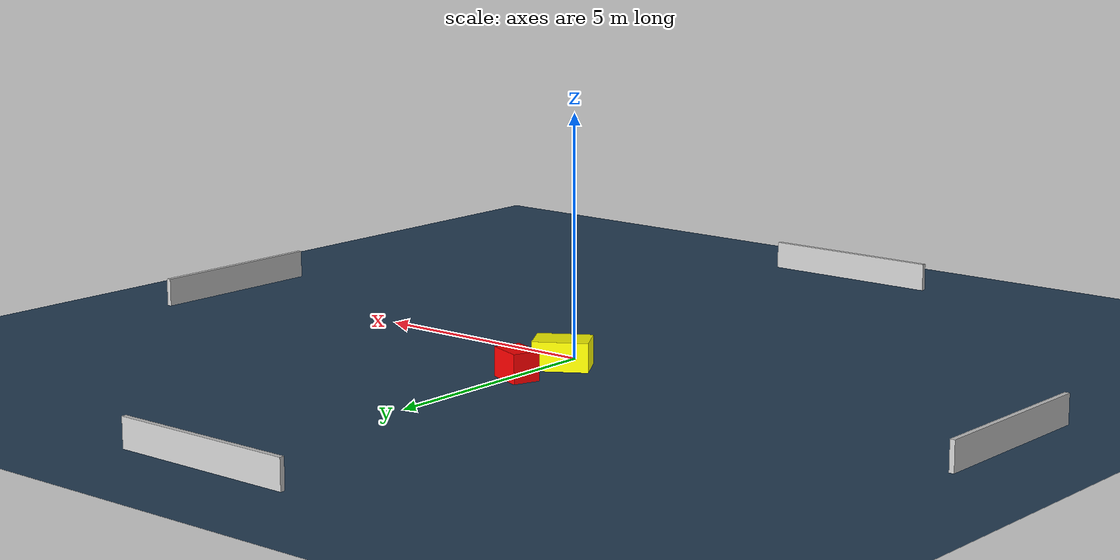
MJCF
<?xml version="1.0" ?>
<mujoco model="generated_environment">
  <option timestep="0.01" integrator="RK4" cone="elliptic"/>
  <default>
    <geom density="1"/>
  </default>
  <asset>
    <texture builtin="gradient" height="3072" name="skybox" rgb1="0.3 0.5 0.7" rgb2="0 0 0" type="skybox" width="512"/>
    <texture builtin="checker" height="300" name="groundplane" rgb1="0.2 0.3 0.4" rgb2="0.1 0.2 0.3" type="2d" width="300"/>
    <material name="groundplane" reflectance="0.2" texrepeat="5 5" texture="groundplane"/>
  </asset>
  <worldbody>
    <light dir="0 0 -1" directional="true" pos="0 0 1.5"/>
    <geom condim="3" friction="0.5 0.005 0.001" material="groundplane" name="floor" pos="0 0 0" size="0 0 0.05" type="plane"/>
    <body name="walls">
      <geom name="wall_1" condim="4" pos="-10.0 0.0 0.3" rgba="0.800000011920929 0.800000011920929 0.800000011920929 1.0" size="0.05 2.0 0.3" type="box"/>
      <geom name="wall_2" condim="4" pos="10.0 0.0 0.3" rgba="0.800000011920929 0.800000011920929 0.800000011920929 1.0" size="0.05 2.0 0.3" type="box"/>
      <geom name="wall_3" condim="4" pos="0.0 -10.0 0.3" rgba="0.800000011920929 0.800000011920929 0.800000011920929 1.0" size="2.0 0.05 0.3" type="box"/>
      <geom name="wall_4" condim="4" pos="0.0 10.0 0.3" rgba="0.800000011920929 0.800000011920929 0.800000011920929 1.0" size="2.0 0.05 0.3" type="box"/>
    </body>
    <body name="robot">
      <joint name="joint_x" type="slide" pos="0 0 0" axis="1 0 0"/>
      <joint name="joint_y" type="slide" pos="0 0 0" axis="0 1 0"/>
      <geom name="robot" type="cylinder" pos="0.0 0.0 0.2" size="0.2 0.2 0.0" mass="5.0" friction="1.0 0.005 0.0001" condim="4" rgba="1.0 1.0 0.0 1.0"/>
    </body>
    <body name="obstacle_1_movable">
      <geom name="obstacle_1_movable" condim="4" pos="-0.24362116464883862 0.6710846035710584 0.3" euler="0 0 301.4352673362459" friction="0.0 0.005 0.001" rgba="1.0 1.0 0.0 1.0" size="0.377014947317466 0.5661713117086118 0.3" type="box" mass="0.1"/>
      <joint type="free"/>
    </body>
    <body name="obstacle_2_static">
      <geom name="obstacle_2_static" condim="4" pos="-0.11426359746282881 1.9122948509186375 0.3" euler="0 0 160.49485110212416" friction="0.0 0.005 0.001" rgba="1.0 0.0 0.0 1.0" size="0.38977717262820066 0.2827188883044267 0.3" type="box"/>
    </body>
  </worldbody>
  <actuator>
    <motor name="actuator_x" joint="joint_x" gear="1" ctrlrange="-1 1"/>
    <motor name="actuator_y" joint="joint_y" gear="1" ctrlrange="-1 1"/>
  </actuator>
</mujoco>
